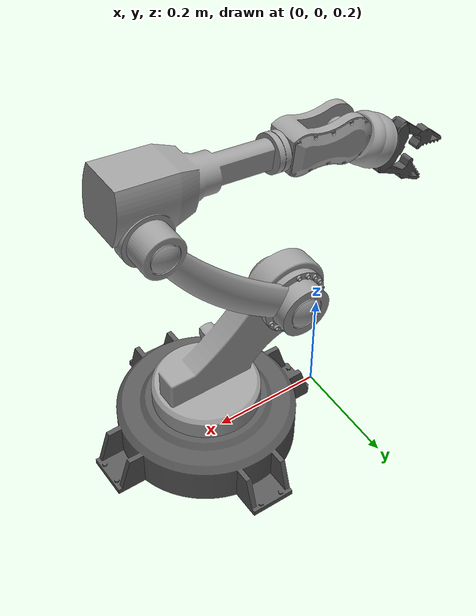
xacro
<?xml version="1.0" ?>
<robot name="industrial_robot_copy" xmlns:xacro="http://www.ros.org/wiki/xacro">

<xacro:include filename="$(find industrial_robot_copy_description)/urdf/materials.xacro" />
<xacro:include filename="$(find industrial_robot_copy_description)/urdf/industrial_robot_copy.trans" />
<xacro:include filename="$(find industrial_robot_copy_description)/urdf/industrial_robot_copy.gazebo" />
<link name="base_link">
  <inertial>
    <origin xyz="0.25479252035426364 0.03960242888380495 0.312674565745364" rpy="0 0 0"/>
    <mass value="45.314283779678796"/>
    <inertia ixx="0.28649" iyy="0.286673" izz="0.523129" ixy="0.006282" iyz="-0.000231" ixz="-0.003975"/>
  </inertial>
  <visual>
    <origin xyz="0 0 0" rpy="0 0 0"/>
    <geometry>
      <mesh filename="package://industrial_robot_copy_description/meshes/base_link.stl" scale="0.001 0.001 0.001"/>
    </geometry>
    <material name="paint_metallic_black"/>
  </visual>
  <collision>
    <origin xyz="0 0 0" rpy="0 0 0"/>
    <geometry>
      <mesh filename="package://industrial_robot_copy_description/meshes/base_link.stl" scale="0.001 0.001 0.001"/>
    </geometry>
  </collision>
</link>

<link name="JAW_1_1">
  <inertial>
    <origin xyz="-0.06049379017156939 -0.004770525132935272 0.08402254440519713" rpy="0 0 0"/>
    <mass value="18.758769158580847"/>
    <inertia ixx="0.0955" iyy="0.193886" izz="0.134675" ixy="-0.006401" iyz="0.005391" ixz="0.073747"/>
  </inertial>
  <visual>
    <origin xyz="-0.252669 -0.038154 -0.357938" rpy="0 0 0"/>
    <geometry>
      <mesh filename="package://industrial_robot_copy_description/meshes/JAW_1_1.stl" scale="0.001 0.001 0.001"/>
    </geometry>
    <material name="steel_satin"/>
  </visual>
  <collision>
    <origin xyz="-0.252669 -0.038154 -0.357938" rpy="0 0 0"/>
    <geometry>
      <mesh filename="package://industrial_robot_copy_description/meshes/JAW_1_1.stl" scale="0.001 0.001 0.001"/>
    </geometry>
  </collision>
</link>

<link name="JAW_2_1">
  <inertial>
    <origin xyz="0.10282423113458675 0.01722701763814661 0.09428229578572012" rpy="0 0 0"/>
    <mass value="6.328393377937575"/>
    <inertia ixx="0.067887" iyy="0.135193" izz="0.069314" ixy="-0.000575" iyz="-0.000834" ixz="-0.064587"/>
  </inertial>
  <visual>
    <origin xyz="-0.099933 -0.056069 -0.515736" rpy="0 0 0"/>
    <geometry>
      <mesh filename="package://industrial_robot_copy_description/meshes/JAW_2_1.stl" scale="0.001 0.001 0.001"/>
    </geometry>
    <material name="steel_satin"/>
  </visual>
  <collision>
    <origin xyz="-0.099933 -0.056069 -0.515736" rpy="0 0 0"/>
    <geometry>
      <mesh filename="package://industrial_robot_copy_description/meshes/JAW_2_1.stl" scale="0.001 0.001 0.001"/>
    </geometry>
  </collision>
</link>

<link name="JAW_3_1">
  <inertial>
    <origin xyz="-0.048365262956186206 -0.037034997445625294 0.03323056542751013" rpy="0 0 0"/>
    <mass value="11.403864315387723"/>
    <inertia ixx="0.015334" iyy="0.067298" izz="0.064146" ixy="-0.001669" iyz="0.00082" ixz="-0.003491"/>
  </inertial>
  <visual>
    <origin xyz="-0.346427 -0.04955 -0.764328" rpy="0 0 0"/>
    <geometry>
      <mesh filename="package://industrial_robot_copy_description/meshes/JAW_3_1.stl" scale="0.001 0.001 0.001"/>
    </geometry>
    <material name="steel_satin"/>
  </visual>
  <collision>
    <origin xyz="-0.346427 -0.04955 -0.764328" rpy="0 0 0"/>
    <geometry>
      <mesh filename="package://industrial_robot_copy_description/meshes/JAW_3_1.stl" scale="0.001 0.001 0.001"/>
    </geometry>
  </collision>
</link>

<link name="JAW_4_1">
  <inertial>
    <origin xyz="-0.0588795500674599 -0.0012760884745383495 -0.0076744357716590494" rpy="0 0 0"/>
    <mass value="3.7369903850273785"/>
    <inertia ixx="0.003234" iyy="0.008956" izz="0.009379" ixy="-8.4e-05" iyz="-1.7e-05" ixz="-0.000814"/>
  </inertial>
  <visual>
    <origin xyz="-0.091509 -0.008001 -0.776442" rpy="0 0 0"/>
    <geometry>
      <mesh filename="package://industrial_robot_copy_description/meshes/JAW_4_1.stl" scale="0.001 0.001 0.001"/>
    </geometry>
    <material name="steel_satin"/>
  </visual>
  <collision>
    <origin xyz="-0.091509 -0.008001 -0.776442" rpy="0 0 0"/>
    <geometry>
      <mesh filename="package://industrial_robot_copy_description/meshes/JAW_4_1.stl" scale="0.001 0.001 0.001"/>
    </geometry>
  </collision>
</link>

<link name="JAW_5_1">
  <inertial>
    <origin xyz="-0.048934924155457804 -0.01754497290554343 -0.03261424218885067" rpy="0 0 0"/>
    <mass value="2.672375979830366"/>
    <inertia ixx="0.002221" iyy="0.002819" izz="0.002543" ixy="-2.6e-05" iyz="-1.7e-05" ixz="-0.000377"/>
  </inertial>
  <visual>
    <origin xyz="0.015 -0.023518 -0.762751" rpy="0 0 0"/>
    <geometry>
      <mesh filename="package://industrial_robot_copy_description/meshes/JAW_5_1.stl" scale="0.001 0.001 0.001"/>
    </geometry>
    <material name="steel_satin"/>
  </visual>
  <collision>
    <origin xyz="0.015 -0.023518 -0.762751" rpy="0 0 0"/>
    <geometry>
      <mesh filename="package://industrial_robot_copy_description/meshes/JAW_5_1.stl" scale="0.001 0.001 0.001"/>
    </geometry>
  </collision>
</link>

<link name="JAW_6_1">
  <inertial>
    <origin xyz="-0.016882249888723014 -0.00015645432870115515 -0.01114178804949817" rpy="0 0 0"/>
    <mass value="0.6001743214822725"/>
    <inertia ixx="0.000296" iyy="0.0003" izz="0.000272" ixy="-1e-06" iyz="2e-06" ixz="2.9e-05"/>
  </inertial>
  <visual>
    <origin xyz="0.089567 -0.005578 -0.713219" rpy="0 0 0"/>
    <geometry>
      <mesh filename="package://industrial_robot_copy_description/meshes/JAW_6_1.stl" scale="0.001 0.001 0.001"/>
    </geometry>
    <material name="paint_metallic_black"/>
  </visual>
  <collision>
    <origin xyz="0.089567 -0.005578 -0.713219" rpy="0 0 0"/>
    <geometry>
      <mesh filename="package://industrial_robot_copy_description/meshes/JAW_6_1.stl" scale="0.001 0.001 0.001"/>
    </geometry>
  </collision>
</link>

<link name="JAW_7__2__1">
  <inertial>
    <origin xyz="-0.04301971904017454 -0.009851885199512335 -0.020338300980165647" rpy="0 0 0"/>
    <mass value="0.24416324011847917"/>
    <inertia ixx="7e-05" iyy="0.000223" izz="0.000167" ixy="-3e-06" iyz="-1e-06" ixz="-8.6e-05"/>
  </inertial>
  <visual>
    <origin xyz="0.098109 -0.016161 -0.659234" rpy="0 0 0"/>
    <geometry>
      <mesh filename="package://industrial_robot_copy_description/meshes/JAW_7__2__1.stl" scale="0.001 0.001 0.001"/>
    </geometry>
    <material name="paint_metallic_black"/>
  </visual>
  <collision>
    <origin xyz="0.098109 -0.016161 -0.659234" rpy="0 0 0"/>
    <geometry>
      <mesh filename="package://industrial_robot_copy_description/meshes/JAW_7__2__1.stl" scale="0.001 0.001 0.001"/>
    </geometry>
  </collision>
</link>

<link name="JAW_7_1">
  <inertial>
    <origin xyz="-0.03420637920439143 -0.009382403487553962 -0.033286840587699595" rpy="0 0 0"/>
    <mass value="0.24416324019014904"/>
    <inertia ixx="9.5e-05" iyy="0.000223" izz="0.000142" ixy="0.0" iyz="0.0" ixz="-9.6e-05"/>
  </inertial>
  <visual>
    <origin xyz="0.142993 -0.012407 -0.7273" rpy="0 0 0"/>
    <geometry>
      <mesh filename="package://industrial_robot_copy_description/meshes/JAW_7_1.stl" scale="0.001 0.001 0.001"/>
    </geometry>
    <material name="paint_metallic_black"/>
  </visual>
  <collision>
    <origin xyz="0.142993 -0.012407 -0.7273" rpy="0 0 0"/>
    <geometry>
      <mesh filename="package://industrial_robot_copy_description/meshes/JAW_7_1.stl" scale="0.001 0.001 0.001"/>
    </geometry>
  </collision>
</link>

<joint name="base_twist" type="continuous">
  <origin xyz="0.252669 0.038154 0.357938" rpy="0 0 0"/>
  <parent link="base_link"/>
  <child link="JAW_1_1"/>
  <axis xyz="-0.015549 0.0 0.999879"/>
</joint>

<joint name="Rev1" type="continuous">
  <origin xyz="-0.152736 0.017915 0.157798" rpy="0 0 0"/>
  <parent link="JAW_1_1"/>
  <child link="JAW_2_1"/>
  <axis xyz="0.013905 -0.999903 0.000216"/>
</joint>

<joint name="Rev2" type="continuous">
  <origin xyz="0.246494 -0.006519 0.248592" rpy="0 0 0"/>
  <parent link="JAW_2_1"/>
  <child link="JAW_3_1"/>
  <axis xyz="0.013905 -0.999903 0.000216"/>
</joint>

<joint name="Rev3" type="continuous">
  <origin xyz="-0.254918 -0.041549 0.012114" rpy="0 0 0"/>
  <parent link="JAW_3_1"/>
  <child link="JAW_4_1"/>
  <axis xyz="0.991528 0.013817 0.129157"/>
</joint>

<joint name="Rev4" type="continuous">
  <origin xyz="-0.106509 0.015517 -0.013691" rpy="0 0 0"/>
  <parent link="JAW_4_1"/>
  <child link="JAW_5_1"/>
  <axis xyz="-0.015077 0.999848 0.008784"/>
</joint>

<joint name="Rev5" type="continuous">
  <origin xyz="-0.074567 -0.01794 -0.049532" rpy="0 0 0"/>
  <parent link="JAW_5_1"/>
  <child link="JAW_6_1"/>
  <axis xyz="-0.83461 -0.007747 -0.550787"/>
</joint>

<joint name="Rev6" type="continuous">
  <origin xyz="-0.008542 0.010583 -0.053985" rpy="0 0 0"/>
  <parent link="JAW_6_1"/>
  <child link="JAW_7__2__1"/>
  <axis xyz="-0.031793 0.998912 0.034127"/>
</joint>

<joint name="Rev7" type="continuous">
  <origin xyz="-0.053426 0.006829 0.014081" rpy="0 0 0"/>
  <parent link="JAW_6_1"/>
  <child link="JAW_7_1"/>
  <axis xyz="-0.031793 0.998912 0.034127"/>
</joint>

</robot>

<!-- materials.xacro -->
<robot name="industrial_robot_copy" xmlns:xacro="http://www.ros.org/wiki/xacro" >

<material name="silver_default">
  <color rgba="0.700 0.700 0.700 1.000"/>
</material>
<material name="paint_metallic_black">
  <color rgba="0.34901960784313724 0.34901960784313724 0.34901960784313724 1.0"/>
</material>
<material name="steel_satin">
  <color rgba="0.6274509803921569 0.6274509803921569 0.6274509803921569 1.0"/>
</material>

</robot>

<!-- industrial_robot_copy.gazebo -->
<robot name="industrial_robot_copy" xmlns:xacro="http://www.ros.org/wiki/xacro" >

<xacro:property name="body_color" value="Gazebo/Silver" />

<gazebo>
  <plugin name="control" filename="libgazebo_ros_control.so"/>
</gazebo>
<gazebo reference="base_link">
  <material>${body_color}</material>
  <mu1>0.2</mu1>
  <mu2>0.2</mu2>
  <selfCollide>true</selfCollide>
  <gravity>true</gravity>
</gazebo>

<gazebo reference="JAW_1_1">
  <material>${body_color}</material>
  <mu1>0.2</mu1>
  <mu2>0.2</mu2>
  <selfCollide>true</selfCollide>
</gazebo>

<gazebo reference="JAW_2_1">
  <material>${body_color}</material>
  <mu1>0.2</mu1>
  <mu2>0.2</mu2>
  <selfCollide>true</selfCollide>
</gazebo>

<gazebo reference="JAW_3_1">
  <material>${body_color}</material>
  <mu1>0.2</mu1>
  <mu2>0.2</mu2>
  <selfCollide>true</selfCollide>
</gazebo>

<gazebo reference="JAW_4_1">
  <material>${body_color}</material>
  <mu1>0.2</mu1>
  <mu2>0.2</mu2>
  <selfCollide>true</selfCollide>
</gazebo>

<gazebo reference="JAW_5_1">
  <material>${body_color}</material>
  <mu1>0.2</mu1>
  <mu2>0.2</mu2>
  <selfCollide>true</selfCollide>
</gazebo>

<gazebo reference="JAW_6_1">
  <material>${body_color}</material>
  <mu1>0.2</mu1>
  <mu2>0.2</mu2>
  <selfCollide>true</selfCollide>
</gazebo>

<gazebo reference="JAW_7__2__1">
  <material>${body_color}</material>
  <mu1>0.2</mu1>
  <mu2>0.2</mu2>
  <selfCollide>true</selfCollide>
</gazebo>

<gazebo reference="JAW_7_1">
  <material>${body_color}</material>
  <mu1>0.2</mu1>
  <mu2>0.2</mu2>
  <selfCollide>true</selfCollide>
</gazebo>

</robot>
